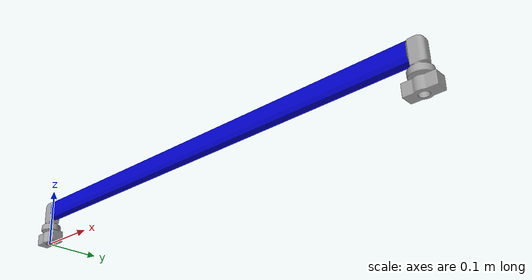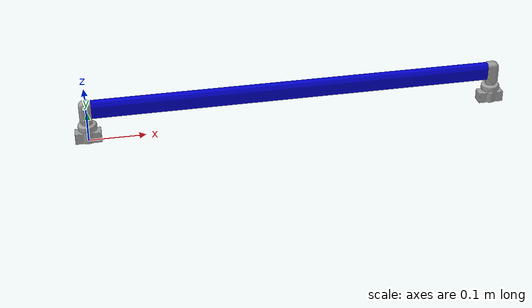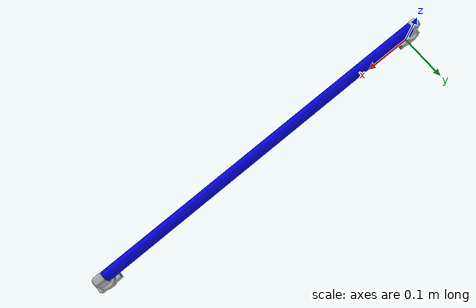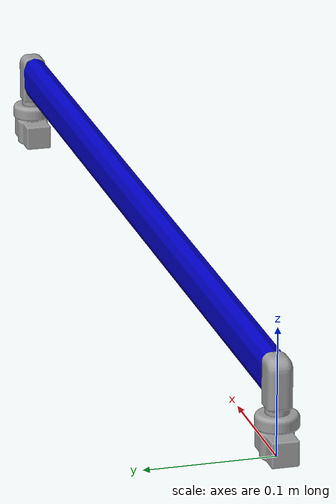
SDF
<?xml version="1.0" ?>
<sdf version='1.4'>
  <model name='handrail_30_model'>
    <static>true</static>
    <link name='handrail_30_link'>
      <pose>0 0 0 0 0 0</pose>
      <inertial>
        <pose>0 0 0 0 0 0</pose>
        <mass>0.36</mass>
        <inertia>
          <ixx>1</ixx>
          <ixy>0</ixy>
          <ixz>0</ixz>
          <iyy>1</iyy>
          <iyz>0</iyz>
          <izz>1</izz>
        </inertia>
      </inertial>
      <collision name='handrail_30_collision'>
        <pose>0 0 0 0 0 0</pose>
        <geometry>
          <mesh>
            <scale>1 1 1</scale>
            <uri>model://handrail_30//meshes//handrail_30.dae</uri>
          </mesh>
        </geometry>
        <surface>
          <contact>
            <ode/>
          </contact>
          <friction>
            <ode/>
          </friction>
        </surface>
      </collision>
      <visual name='handrail_30_visual'>
        <pose>0 0 0 0 0 0</pose>
        <geometry>
          <mesh>
            <scale>1 1 1</scale>
            <uri>model://handrail_30//meshes//handrail_30.dae</uri>
          </mesh>
        </geometry>
      </visual>
    </link>
  </model>
</sdf>
